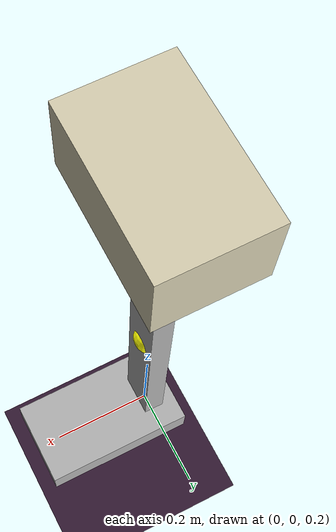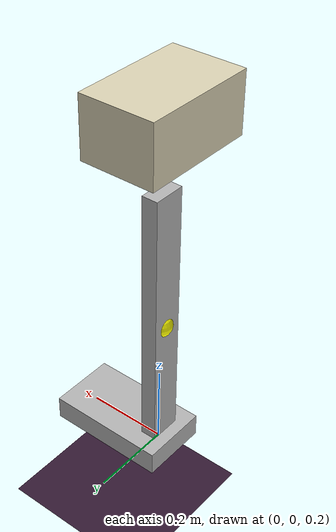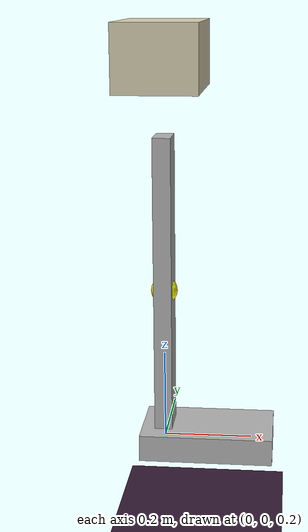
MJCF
<mujoco model="yuuki_robot_1joint">
  <option>
    <flag filterparent="disable"/>
  </option>

  <default>
    <site size="0.03" rgba="1 1 0 1"/>
  </default>

  <asset>
    <texture type="skybox" builtin="gradient" rgb1="1 1 1" rgb2=".6 .8 1" width="256" height="256"/>
    <texture name="grid" type="2d" builtin="checker" width="512" height="512" rgb1=".3 .1 .1" rgb2=".1 .1 .3" />
    <material name="floor_mat" texture="grid" texrepeat="8 8"/>
    <material name="basket" rgba="0.85 0.82 0.7 1"/>
    <material name="servo" rgba="0.65 0.1 0.18 1"/>
    <material name="metal" rgba="0.7 0.7 0.7 1"/>
  </asset>

  <worldbody>
    <camera pos="0 -1 1" xyaxes="0 1 0 0 0 1"/>
    <light pos="0 0 10" dir="0 0 -1" diffuse="0.8 0.8 0.8"/>
    <geom type="plane" size="5 5 0.1" material="floor_mat"/>

    <!-- 基準はカゴの底中央としている。 -->
    <body pos="0 0 1">
      <freejoint name="root"/>

      <site name="imu_site" pos="0 0 0.05" euler="0 0 -90"/>

      <geom name="basket" type="box" pos="0 0 0.0725" size="0.09 0.14 0.0725" material="basket" mass="0.3"/>

      <!-- 1 Leg -->
      <body name="leg" pos="0 0 0">
        <joint name="hip" type="hinge" axis="0 1 0"/>

        <site name="leg_site" pos="0 0 -0.45"/>

        <geom name="leg_link" type="box" pos="0 0 -0.45" size="0.02 0.04 0.35" material="metal" mass="1"/>
        <geom name="foot_plate" type="box" pos="0.1 0 -0.8" size="0.15 0.085 0.03" material="metal" mass="0.5"/>
      </body>
    </body>
  </worldbody>

  <actuator>
    <position name="hip_servo" joint="hip" kp="300" kv="1" ctrlrange="-1.571 1.571" forcerange="-14.7 14.7"/>
  </actuator>

  <sensor>
    <gyro name="imu_gyro" site="imu_site"/>
    <accelerometer name="imu_acc" site="imu_site"/>

    <framequat name="leg_quat" objtype="site" objname="leg_site"/>
  </sensor>
</mujoco>
